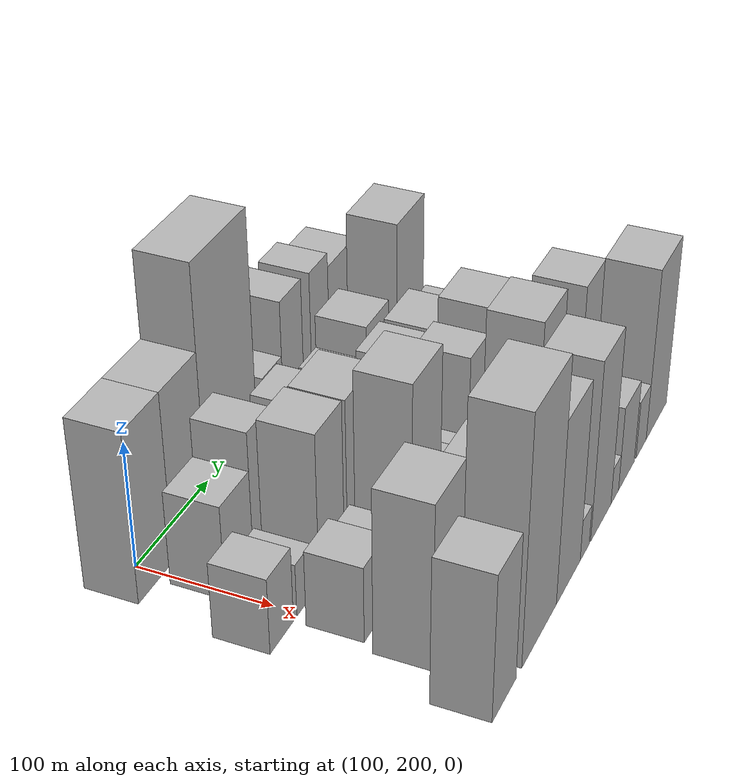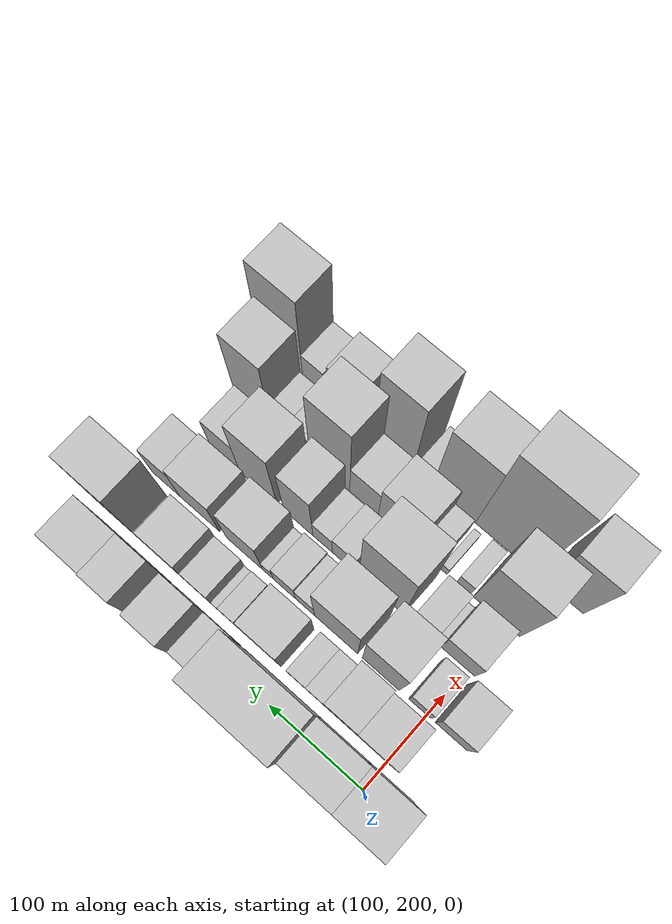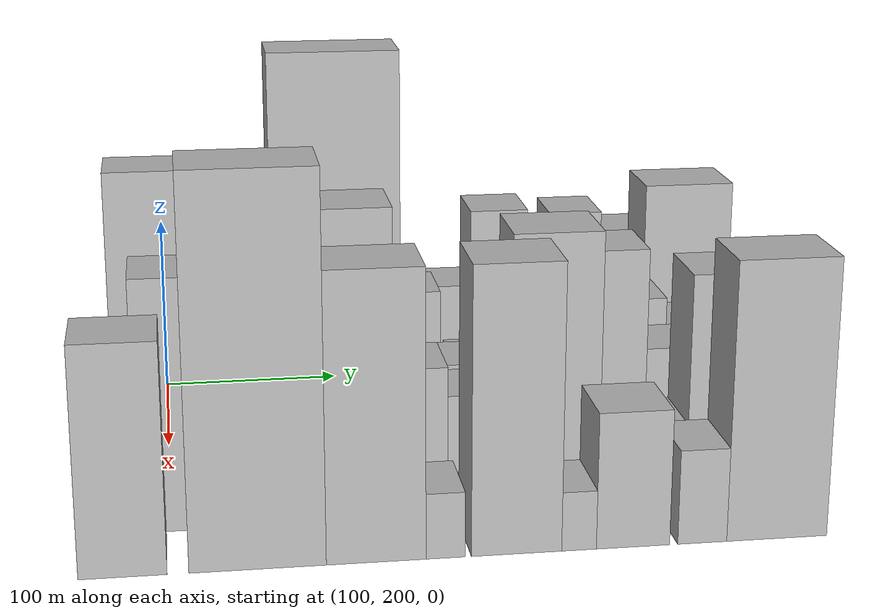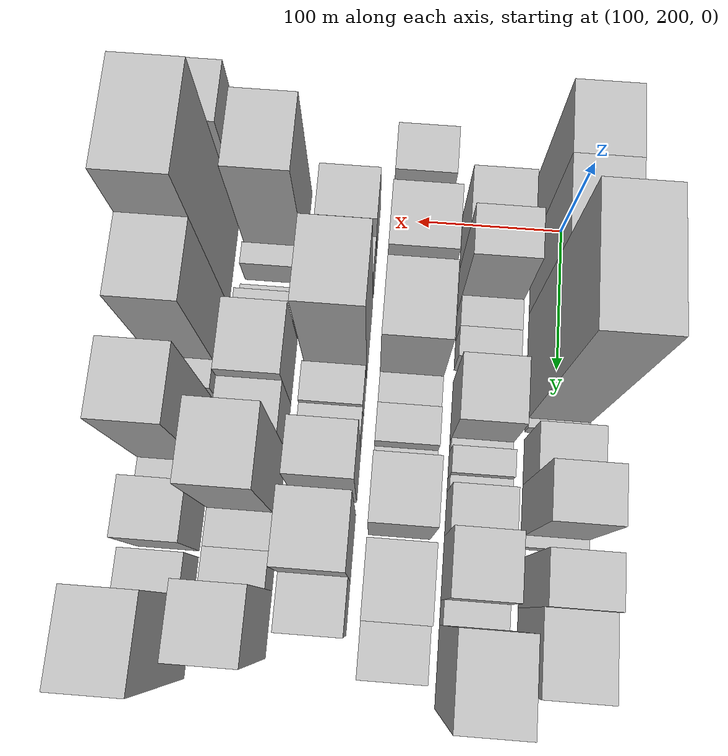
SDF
<sdf version="1.6">
 <world name="default">
  <model name="building_28">
   <static>1</static>
   <pose>100.0000 190.6589 0 0.000000 0.000000 0.000000</pose>
   <link name="link">
    <pose>0 0 67.50 0 0 0</pose>
    <collision name="collision"><geometry><box><size>40.0000 46.0056 135.0000</size></box></geometry></collision>
    <visual name="visual">
     <cast_shadows>0</cast_shadows>
     <geometry><box><size>40.0000 46.0056 135.0000</size></box></geometry>
     <material>
      <script>
       <uri>model://HANNAS_wall/materials/scripts</uri>
       <uri>model://HANNAS_wall/materials/textures</uri>
       <name>vrc/HANNAS_wall</name>
      </script>
     </material>
    </visual>
   </link>
  </model>
  <model name="building_29">
   <static>1</static>
   <pose>100.0000 237.8732 0 0.000000 0.000000 0.000000</pose>
   <link name="link">
    <pose>0 0 67.50 0 0 0</pose>
    <collision name="collision"><geometry><box><size>40.0000 48.4229 135.0000</size></box></geometry></collision>
    <visual name="visual">
     <cast_shadows>0</cast_shadows>
     <geometry><box><size>40.0000 48.4229 135.0000</size></box></geometry>
     <material>
      <script>
       <uri>model://HANNAS_wall/materials/scripts</uri>
       <uri>model://HANNAS_wall/materials/textures</uri>
       <name>vrc/HANNAS_wall</name>
      </script>
     </material>
    </visual>
   </link>
  </model>
  <model name="building_30">
   <static>1</static>
   <pose>100.0000 300.0080 0 0.000000 0.000000 0.000000</pose>
   <link name="link">
    <pose>0 0 100.50 0 0 0</pose>
    <collision name="collision"><geometry><box><size>40.0000 75.8467 201.0000</size></box></geometry></collision>
    <visual name="visual">
     <cast_shadows>0</cast_shadows>
     <geometry><box><size>40.0000 75.8467 201.0000</size></box></geometry>
     <material>
      <script>
       <uri>model://HANNAS_wall/materials/scripts</uri>
       <uri>model://HANNAS_wall/materials/textures</uri>
       <name>vrc/HANNAS_wall</name>
      </script>
     </material>
    </visual>
   </link>
  </model>
  <model name="building_31">
   <static>1</static>
   <pose>100.0000 341.1318 0 0.000000 0.000000 0.000000</pose>
   <link name="link">
    <pose>0 0 7.50 0 0 0</pose>
    <collision name="collision"><geometry><box><size>40.0000 6.4011 15.0000</size></box></geometry></collision>
    <visual name="visual">
     <cast_shadows>0</cast_shadows>
     <geometry><box><size>40.0000 6.4011 15.0000</size></box></geometry>
     <material>
      <script>
       <uri>model://HANNAS_wall/materials/scripts</uri>
       <uri>model://HANNAS_wall/materials/textures</uri>
       <name>vrc/HANNAS_wall</name>
      </script>
     </material>
    </visual>
   </link>
  </model>
  <model name="building_32">
   <static>1</static>
   <pose>100.0000 364.4983 0 0.000000 0.000000 0.000000</pose>
   <link name="link">
    <pose>0 0 30.00 0 0 0</pose>
    <collision name="collision"><geometry><box><size>40.0000 30.3318 60.0000</size></box></geometry></collision>
    <visual name="visual">
     <cast_shadows>0</cast_shadows>
     <geometry><box><size>40.0000 30.3318 60.0000</size></box></geometry>
     <material>
      <script>
       <uri>model://HANNAS_wall/materials/scripts</uri>
       <uri>model://HANNAS_wall/materials/textures</uri>
       <name>vrc/HANNAS_wall</name>
      </script>
     </material>
    </visual>
   </link>
  </model>
  <model name="building_33">
   <static>1</static>
   <pose>100.0000 396.5555 0 0.000000 0.000000 0.000000</pose>
   <link name="link">
    <pose>0 0 52.50 0 0 0</pose>
    <collision name="collision"><geometry><box><size>40.0000 33.7827 105.0000</size></box></geometry></collision>
    <visual name="visual">
     <cast_shadows>0</cast_shadows>
     <geometry><box><size>40.0000 33.7827 105.0000</size></box></geometry>
     <material>
      <script>
       <uri>model://HANNAS_wall/materials/scripts</uri>
       <uri>model://HANNAS_wall/materials/textures</uri>
       <name>vrc/HANNAS_wall</name>
      </script>
     </material>
    </visual>
   </link>
  </model>
  <model name="building_34">
   <static>1</static>
   <pose>100.0000 417.2055 0 0.000000 0.000000 0.000000</pose>
   <link name="link">
    <pose>0 0 9.00 0 0 0</pose>
    <collision name="collision"><geometry><box><size>40.0000 7.5172 18.0000</size></box></geometry></collision>
    <visual name="visual">
     <cast_shadows>0</cast_shadows>
     <geometry><box><size>40.0000 7.5172 18.0000</size></box></geometry>
     <material>
      <script>
       <uri>model://HANNAS_wall/materials/scripts</uri>
       <uri>model://HANNAS_wall/materials/textures</uri>
       <name>vrc/HANNAS_wall</name>
      </script>
     </material>
    </visual>
   </link>
  </model>
  <model name="building_35">
   <static>1</static>
   <pose>100.0000 442.3618 0 0.000000 0.000000 0.000000</pose>
   <link name="link">
    <pose>0 0 51.00 0 0 0</pose>
    <collision name="collision"><geometry><box><size>40.0000 30.7955 102.0000</size></box></geometry></collision>
    <visual name="visual">
     <cast_shadows>0</cast_shadows>
     <geometry><box><size>40.0000 30.7955 102.0000</size></box></geometry>
     <material>
      <script>
       <uri>model://HANNAS_wall/materials/scripts</uri>
       <uri>model://HANNAS_wall/materials/textures</uri>
       <name>vrc/HANNAS_wall</name>
      </script>
     </material>
    </visual>
   </link>
  </model>
  <model name="building_36">
   <static>1</static>
   <pose>100.0000 481.5599 0 0.000000 0.000000 0.000000</pose>
   <link name="link">
    <pose>0 0 45.00 0 0 0</pose>
    <collision name="collision"><geometry><box><size>40.0000 47.6008 90.0000</size></box></geometry></collision>
    <visual name="visual">
     <cast_shadows>0</cast_shadows>
     <geometry><box><size>40.0000 47.6008 90.0000</size></box></geometry>
     <material>
      <script>
       <uri>model://HANNAS_wall/materials/scripts</uri>
       <uri>model://HANNAS_wall/materials/textures</uri>
       <name>vrc/HANNAS_wall</name>
      </script>
     </material>
    </visual>
   </link>
  </model>
  <model name="building_77">
   <static>1</static>
   <pose>149.0000 213.2837 0 0.000000 0.000000 0.000000</pose>
   <link name="link">
    <pose>0 0 37.50 0 0 0</pose>
    <collision name="collision"><geometry><box><size>40.0000 40.1100 75.0000</size></box></geometry></collision>
    <visual name="visual">
     <cast_shadows>0</cast_shadows>
     <geometry><box><size>40.0000 40.1100 75.0000</size></box></geometry>
     <material>
      <script>
       <uri>model://HANNAS_wall/materials/scripts</uri>
       <uri>model://HANNAS_wall/materials/textures</uri>
       <name>vrc/HANNAS_wall</name>
      </script>
     </material>
    </visual>
   </link>
  </model>
  <model name="building_78">
   <static>1</static>
   <pose>149.0000 249.1378 0 0.000000 0.000000 0.000000</pose>
   <link name="link">
    <pose>0 0 52.50 0 0 0</pose>
    <collision name="collision"><geometry><box><size>40.0000 31.5982 105.0000</size></box></geometry></collision>
    <visual name="visual">
     <cast_shadows>0</cast_shadows>
     <geometry><box><size>40.0000 31.5982 105.0000</size></box></geometry>
     <material>
      <script>
       <uri>model://HANNAS_wall/materials/scripts</uri>
       <uri>model://HANNAS_wall/materials/textures</uri>
       <name>vrc/HANNAS_wall</name>
      </script>
     </material>
    </visual>
   </link>
  </model>
  <model name="building_79">
   <static>1</static>
   <pose>149.0000 275.2438 0 0.000000 0.000000 0.000000</pose>
   <link name="link">
    <pose>0 0 18.00 0 0 0</pose>
    <collision name="collision"><geometry><box><size>40.0000 20.6138 36.0000</size></box></geometry></collision>
    <visual name="visual">
     <cast_shadows>0</cast_shadows>
     <geometry><box><size>40.0000 20.6138 36.0000</size></box></geometry>
     <material>
      <script>
       <uri>model://HANNAS_wall/materials/scripts</uri>
       <uri>model://HANNAS_wall/materials/textures</uri>
       <name>vrc/HANNAS_wall</name>
      </script>
     </material>
    </visual>
   </link>
  </model>
  <model name="building_80">
   <static>1</static>
   <pose>149.0000 295.6123 0 0.000000 0.000000 0.000000</pose>
   <link name="link">
    <pose>0 0 18.00 0 0 0</pose>
    <collision name="collision"><geometry><box><size>40.0000 20.1232 36.0000</size></box></geometry></collision>
    <visual name="visual">
     <cast_shadows>0</cast_shadows>
     <geometry><box><size>40.0000 20.1232 36.0000</size></box></geometry>
     <material>
      <script>
       <uri>model://HANNAS_wall/materials/scripts</uri>
       <uri>model://HANNAS_wall/materials/textures</uri>
       <name>vrc/HANNAS_wall</name>
      </script>
     </material>
    </visual>
   </link>
  </model>
  <model name="building_81">
   <static>1</static>
   <pose>149.0000 334.1449 0 0.000000 0.000000 0.000000</pose>
   <link name="link">
    <pose>0 0 36.00 0 0 0</pose>
    <collision name="collision"><geometry><box><size>40.0000 40.9420 72.0000</size></box></geometry></collision>
    <visual name="visual">
     <cast_shadows>0</cast_shadows>
     <geometry><box><size>40.0000 40.9420 72.0000</size></box></geometry>
     <material>
      <script>
       <uri>model://HANNAS_wall/materials/scripts</uri>
       <uri>model://HANNAS_wall/materials/textures</uri>
       <name>vrc/HANNAS_wall</name>
      </script>
     </material>
    </visual>
   </link>
  </model>
  <model name="building_82">
   <static>1</static>
   <pose>149.0000 358.3603 0 0.000000 0.000000 0.000000</pose>
   <link name="link">
    <pose>0 0 7.50 0 0 0</pose>
    <collision name="collision"><geometry><box><size>40.0000 7.4889 15.0000</size></box></geometry></collision>
    <visual name="visual">
     <cast_shadows>0</cast_shadows>
     <geometry><box><size>40.0000 7.4889 15.0000</size></box></geometry>
     <material>
      <script>
       <uri>model://HANNAS_wall/materials/scripts</uri>
       <uri>model://HANNAS_wall/materials/textures</uri>
       <name>vrc/HANNAS_wall</name>
      </script>
     </material>
    </visual>
   </link>
  </model>
  <model name="building_83">
   <static>1</static>
   <pose>149.0000 370.8016 0 0.000000 0.000000 0.000000</pose>
   <link name="link">
    <pose>0 0 15.00 0 0 0</pose>
    <collision name="collision"><geometry><box><size>40.0000 17.3936 30.0000</size></box></geometry></collision>
    <visual name="visual">
     <cast_shadows>0</cast_shadows>
     <geometry><box><size>40.0000 17.3936 30.0000</size></box></geometry>
     <material>
      <script>
       <uri>model://HANNAS_wall/materials/scripts</uri>
       <uri>model://HANNAS_wall/materials/textures</uri>
       <name>vrc/HANNAS_wall</name>
      </script>
     </material>
    </visual>
   </link>
  </model>
  <model name="building_84">
   <static>1</static>
   <pose>149.0000 383.8453 0 0.000000 0.000000 0.000000</pose>
   <link name="link">
    <pose>0 0 10.50 0 0 0</pose>
    <collision name="collision"><geometry><box><size>40.0000 8.6939 21.0000</size></box></geometry></collision>
    <visual name="visual">
     <cast_shadows>0</cast_shadows>
     <geometry><box><size>40.0000 8.6939 21.0000</size></box></geometry>
     <material>
      <script>
       <uri>model://HANNAS_wall/materials/scripts</uri>
       <uri>model://HANNAS_wall/materials/textures</uri>
       <name>vrc/HANNAS_wall</name>
      </script>
     </material>
    </visual>
   </link>
  </model>
  <model name="building_85">
   <static>1</static>
   <pose>149.0000 402.3575 0 0.000000 0.000000 0.000000</pose>
   <link name="link">
    <pose>0 0 24.00 0 0 0</pose>
    <collision name="collision"><geometry><box><size>40.0000 28.3305 48.0000</size></box></geometry></collision>
    <visual name="visual">
     <cast_shadows>0</cast_shadows>
     <geometry><box><size>40.0000 28.3305 48.0000</size></box></geometry>
     <material>
      <script>
       <uri>model://HANNAS_wall/materials/scripts</uri>
       <uri>model://HANNAS_wall/materials/textures</uri>
       <name>vrc/HANNAS_wall</name>
      </script>
     </material>
    </visual>
   </link>
  </model>
  <model name="building_86">
   <static>1</static>
   <pose>149.0000 436.6091 0 0.000000 0.000000 0.000000</pose>
   <link name="link">
    <pose>0 0 37.50 0 0 0</pose>
    <collision name="collision"><geometry><box><size>40.0000 40.1727 75.0000</size></box></geometry></collision>
    <visual name="visual">
     <cast_shadows>0</cast_shadows>
     <geometry><box><size>40.0000 40.1727 75.0000</size></box></geometry>
     <material>
      <script>
       <uri>model://HANNAS_wall/materials/scripts</uri>
       <uri>model://HANNAS_wall/materials/textures</uri>
       <name>vrc/HANNAS_wall</name>
      </script>
     </material>
    </visual>
   </link>
  </model>
  <model name="building_87">
   <static>1</static>
   <pose>149.0000 464.2760 0 0.000000 0.000000 0.000000</pose>
   <link name="link">
    <pose>0 0 15.00 0 0 0</pose>
    <collision name="collision"><geometry><box><size>40.0000 15.1610 30.0000</size></box></geometry></collision>
    <visual name="visual">
     <cast_shadows>0</cast_shadows>
     <geometry><box><size>40.0000 15.1610 30.0000</size></box></geometry>
     <material>
      <script>
       <uri>model://HANNAS_wall/materials/scripts</uri>
       <uri>model://HANNAS_wall/materials/textures</uri>
       <name>vrc/HANNAS_wall</name>
      </script>
     </material>
    </visual>
   </link>
  </model>
  <model name="building_88">
   <static>1</static>
   <pose>149.0000 496.9152 0 0.000000 0.000000 0.000000</pose>
   <link name="link">
    <pose>0 0 64.50 0 0 0</pose>
    <collision name="collision"><geometry><box><size>40.0000 50.1175 129.0000</size></box></geometry></collision>
    <visual name="visual">
     <cast_shadows>0</cast_shadows>
     <geometry><box><size>40.0000 50.1175 129.0000</size></box></geometry>
     <material>
      <script>
       <uri>model://HANNAS_wall/materials/scripts</uri>
       <uri>model://HANNAS_wall/materials/textures</uri>
       <name>vrc/HANNAS_wall</name>
      </script>
     </material>
    </visual>
   </link>
  </model>
  <model name="building_128">
   <static>1</static>
   <pose>198.0000 175.1893 0 0.000000 0.000000 0.000000</pose>
   <link name="link">
    <pose>0 0 30.00 0 0 0</pose>
    <collision name="collision"><geometry><box><size>40.0000 33.1063 60.0000</size></box></geometry></collision>
    <visual name="visual">
     <cast_shadows>0</cast_shadows>
     <geometry><box><size>40.0000 33.1063 60.0000</size></box></geometry>
     <material>
      <script>
       <uri>model://HANNAS_wall/materials/scripts</uri>
       <uri>model://HANNAS_wall/materials/textures</uri>
       <name>vrc/HANNAS_wall</name>
      </script>
     </material>
    </visual>
   </link>
  </model>
  <model name="building_129">
   <static>1</static>
   <pose>198.0000 208.2592 0 0.000000 0.000000 0.000000</pose>
   <link name="link">
    <pose>0 0 21.00 0 0 0</pose>
    <collision name="collision"><geometry><box><size>40.0000 23.0335 42.0000</size></box></geometry></collision>
    <visual name="visual">
     <cast_shadows>0</cast_shadows>
     <geometry><box><size>40.0000 23.0335 42.0000</size></box></geometry>
     <material>
      <script>
       <uri>model://HANNAS_wall/materials/scripts</uri>
       <uri>model://HANNAS_wall/materials/textures</uri>
       <name>vrc/HANNAS_wall</name>
      </script>
     </material>
    </visual>
   </link>
  </model>
  <model name="building_130">
   <static>1</static>
   <pose>198.0000 249.4900 0 0.000000 0.000000 0.000000</pose>
   <link name="link">
    <pose>0 0 60.00 0 0 0</pose>
    <collision name="collision"><geometry><box><size>40.0000 39.4283 120.0000</size></box></geometry></collision>
    <visual name="visual">
     <cast_shadows>0</cast_shadows>
     <geometry><box><size>40.0000 39.4283 120.0000</size></box></geometry>
     <material>
      <script>
       <uri>model://HANNAS_wall/materials/scripts</uri>
       <uri>model://HANNAS_wall/materials/textures</uri>
       <name>vrc/HANNAS_wall</name>
      </script>
     </material>
    </visual>
   </link>
  </model>
  <model name="building_131">
   <static>1</static>
   <pose>198.0000 297.5132 0 0.000000 0.000000 0.000000</pose>
   <link name="link">
    <pose>0 0 58.50 0 0 0</pose>
    <collision name="collision"><geometry><box><size>40.0000 46.6180 117.0000</size></box></geometry></collision>
    <visual name="visual">
     <cast_shadows>0</cast_shadows>
     <geometry><box><size>40.0000 46.6180 117.0000</size></box></geometry>
     <material>
      <script>
       <uri>model://HANNAS_wall/materials/scripts</uri>
       <uri>model://HANNAS_wall/materials/textures</uri>
       <name>vrc/HANNAS_wall</name>
      </script>
     </material>
    </visual>
   </link>
  </model>
  <model name="building_132">
   <static>1</static>
   <pose>198.0000 331.3176 0 0.000000 0.000000 0.000000</pose>
   <link name="link">
    <pose>0 0 19.50 0 0 0</pose>
    <collision name="collision"><geometry><box><size>40.0000 20.9909 39.0000</size></box></geometry></collision>
    <visual name="visual">
     <cast_shadows>0</cast_shadows>
     <geometry><box><size>40.0000 20.9909 39.0000</size></box></geometry>
     <material>
      <script>
       <uri>model://HANNAS_wall/materials/scripts</uri>
       <uri>model://HANNAS_wall/materials/textures</uri>
       <name>vrc/HANNAS_wall</name>
      </script>
     </material>
    </visual>
   </link>
  </model>
  <model name="building_133">
   <static>1</static>
   <pose>198.0000 353.9723 0 0.000000 0.000000 0.000000</pose>
   <link name="link">
    <pose>0 0 22.50 0 0 0</pose>
    <collision name="collision"><geometry><box><size>40.0000 24.3185 45.0000</size></box></geometry></collision>
    <visual name="visual">
     <cast_shadows>0</cast_shadows>
     <geometry><box><size>40.0000 24.3185 45.0000</size></box></geometry>
     <material>
      <script>
       <uri>model://HANNAS_wall/materials/scripts</uri>
       <uri>model://HANNAS_wall/materials/textures</uri>
       <name>vrc/HANNAS_wall</name>
      </script>
     </material>
    </visual>
   </link>
  </model>
  <model name="building_134">
   <static>1</static>
   <pose>198.0000 372.3274 0 0.000000 0.000000 0.000000</pose>
   <link name="link">
    <pose>0 0 13.50 0 0 0</pose>
    <collision name="collision"><geometry><box><size>40.0000 12.3916 27.0000</size></box></geometry></collision>
    <visual name="visual">
     <cast_shadows>0</cast_shadows>
     <geometry><box><size>40.0000 12.3916 27.0000</size></box></geometry>
     <material>
      <script>
       <uri>model://HANNAS_wall/materials/scripts</uri>
       <uri>model://HANNAS_wall/materials/textures</uri>
       <name>vrc/HANNAS_wall</name>
      </script>
     </material>
    </visual>
   </link>
  </model>
  <model name="building_135">
   <static>1</static>
   <pose>198.0000 398.9053 0 0.000000 0.000000 0.000000</pose>
   <link name="link">
    <pose>0 0 40.50 0 0 0</pose>
    <collision name="collision"><geometry><box><size>40.0000 40.7642 81.0000</size></box></geometry></collision>
    <visual name="visual">
     <cast_shadows>0</cast_shadows>
     <geometry><box><size>40.0000 40.7642 81.0000</size></box></geometry>
     <material>
      <script>
       <uri>model://HANNAS_wall/materials/scripts</uri>
       <uri>model://HANNAS_wall/materials/textures</uri>
       <name>vrc/HANNAS_wall</name>
      </script>
     </material>
    </visual>
   </link>
  </model>
  <model name="building_136">
   <static>1</static>
   <pose>198.0000 449.9651 0 0.000000 0.000000 0.000000</pose>
   <link name="link">
    <pose>0 0 39.00 0 0 0</pose>
    <collision name="collision"><geometry><box><size>40.0000 45.3555 78.0000</size></box></geometry></collision>
    <visual name="visual">
     <cast_shadows>0</cast_shadows>
     <geometry><box><size>40.0000 45.3555 78.0000</size></box></geometry>
     <material>
      <script>
       <uri>model://HANNAS_wall/materials/scripts</uri>
       <uri>model://HANNAS_wall/materials/textures</uri>
       <name>vrc/HANNAS_wall</name>
      </script>
     </material>
    </visual>
   </link>
  </model>
  <model name="building_137">
   <static>1</static>
   <pose>198.0000 488.6839 0 0.000000 0.000000 0.000000</pose>
   <link name="link">
    <pose>0 0 31.50 0 0 0</pose>
    <collision name="collision"><geometry><box><size>40.0000 32.0820 63.0000</size></box></geometry></collision>
    <visual name="visual">
     <cast_shadows>0</cast_shadows>
     <geometry><box><size>40.0000 32.0820 63.0000</size></box></geometry>
     <material>
      <script>
       <uri>model://HANNAS_wall/materials/scripts</uri>
       <uri>model://HANNAS_wall/materials/textures</uri>
       <name>vrc/HANNAS_wall</name>
      </script>
     </material>
    </visual>
   </link>
  </model>
  <model name="building_179">
   <static>1</static>
   <pose>247.0000 209.3337 0 0.000000 0.000000 0.000000</pose>
   <link name="link">
    <pose>0 0 30.00 0 0 0</pose>
    <collision name="collision"><geometry><box><size>40.0000 35.7983 60.0000</size></box></geometry></collision>
    <visual name="visual">
     <cast_shadows>0</cast_shadows>
     <geometry><box><size>40.0000 35.7983 60.0000</size></box></geometry>
     <material>
      <script>
       <uri>model://HANNAS_wall/materials/scripts</uri>
       <uri>model://HANNAS_wall/materials/textures</uri>
       <name>vrc/HANNAS_wall</name>
      </script>
     </material>
    </visual>
   </link>
  </model>
  <model name="building_180">
   <static>1</static>
   <pose>247.0000 230.7442 0 0.000000 0.000000 0.000000</pose>
   <link name="link">
    <pose>0 0 7.50 0 0 0</pose>
    <collision name="collision"><geometry><box><size>40.0000 7.0227 15.0000</size></box></geometry></collision>
    <visual name="visual">
     <cast_shadows>0</cast_shadows>
     <geometry><box><size>40.0000 7.0227 15.0000</size></box></geometry>
     <material>
      <script>
       <uri>model://HANNAS_wall/materials/scripts</uri>
       <uri>model://HANNAS_wall/materials/textures</uri>
       <name>vrc/HANNAS_wall</name>
      </script>
     </material>
    </visual>
   </link>
  </model>
  <model name="building_181">
   <static>1</static>
   <pose>247.0000 246.6758 0 0.000000 0.000000 0.000000</pose>
   <link name="link">
    <pose>0 0 24.00 0 0 0</pose>
    <collision name="collision"><geometry><box><size>40.0000 24.8406 48.0000</size></box></geometry></collision>
    <visual name="visual">
     <cast_shadows>0</cast_shadows>
     <geometry><box><size>40.0000 24.8406 48.0000</size></box></geometry>
     <material>
      <script>
       <uri>model://HANNAS_wall/materials/scripts</uri>
       <uri>model://HANNAS_wall/materials/textures</uri>
       <name>vrc/HANNAS_wall</name>
      </script>
     </material>
    </visual>
   </link>
  </model>
  <model name="building_182">
   <static>1</static>
   <pose>247.0000 291.5370 0 0.000000 0.000000 0.000000</pose>
   <link name="link">
    <pose>0 0 73.50 0 0 0</pose>
    <collision name="collision"><geometry><box><size>40.0000 48.8818 147.0000</size></box></geometry></collision>
    <visual name="visual">
     <cast_shadows>0</cast_shadows>
     <geometry><box><size>40.0000 48.8818 147.0000</size></box></geometry>
     <material>
      <script>
       <uri>model://HANNAS_wall/materials/scripts</uri>
       <uri>model://HANNAS_wall/materials/textures</uri>
       <name>vrc/HANNAS_wall</name>
      </script>
     </material>
    </visual>
   </link>
  </model>
  <model name="building_183">
   <static>1</static>
   <pose>247.0000 332.5207 0 0.000000 0.000000 0.000000</pose>
   <link name="link">
    <pose>0 0 24.00 0 0 0</pose>
    <collision name="collision"><geometry><box><size>40.0000 25.0857 48.0000</size></box></geometry></collision>
    <visual name="visual">
     <cast_shadows>0</cast_shadows>
     <geometry><box><size>40.0000 25.0857 48.0000</size></box></geometry>
     <material>
      <script>
       <uri>model://HANNAS_wall/materials/scripts</uri>
       <uri>model://HANNAS_wall/materials/textures</uri>
       <name>vrc/HANNAS_wall</name>
      </script>
     </material>
    </visual>
   </link>
  </model>
  <model name="building_184">
   <static>1</static>
   <pose>247.0000 355.8893 0 0.000000 0.000000 0.000000</pose>
   <link name="link">
    <pose>0 0 21.00 0 0 0</pose>
    <collision name="collision"><geometry><box><size>40.0000 21.6515 42.0000</size></box></geometry></collision>
    <visual name="visual">
     <cast_shadows>0</cast_shadows>
     <geometry><box><size>40.0000 21.6515 42.0000</size></box></geometry>
     <material>
      <script>
       <uri>model://HANNAS_wall/materials/scripts</uri>
       <uri>model://HANNAS_wall/materials/textures</uri>
       <name>vrc/HANNAS_wall</name>
      </script>
     </material>
    </visual>
   </link>
  </model>
  <model name="building_185">
   <static>1</static>
   <pose>247.0000 383.0094 0 0.000000 0.000000 0.000000</pose>
   <link name="link">
    <pose>0 0 52.50 0 0 0</pose>
    <collision name="collision"><geometry><box><size>40.0000 32.5887 105.0000</size></box></geometry></collision>
    <visual name="visual">
     <cast_shadows>0</cast_shadows>
     <geometry><box><size>40.0000 32.5887 105.0000</size></box></geometry>
     <material>
      <script>
       <uri>model://HANNAS_wall/materials/scripts</uri>
       <uri>model://HANNAS_wall/materials/textures</uri>
       <name>vrc/HANNAS_wall</name>
      </script>
     </material>
    </visual>
   </link>
  </model>
  <model name="building_186">
   <static>1</static>
   <pose>247.0000 428.4027 0 0.000000 0.000000 0.000000</pose>
   <link name="link">
    <pose>0 0 60.00 0 0 0</pose>
    <collision name="collision"><geometry><box><size>40.0000 42.1980 120.0000</size></box></geometry></collision>
    <visual name="visual">
     <cast_shadows>0</cast_shadows>
     <geometry><box><size>40.0000 42.1980 120.0000</size></box></geometry>
     <material>
      <script>
       <uri>model://HANNAS_wall/materials/scripts</uri>
       <uri>model://HANNAS_wall/materials/textures</uri>
       <name>vrc/HANNAS_wall</name>
      </script>
     </material>
    </visual>
   </link>
  </model>
  <model name="building_187">
   <static>1</static>
   <pose>247.0000 466.2460 0 0.000000 0.000000 0.000000</pose>
   <link name="link">
    <pose>0 0 33.00 0 0 0</pose>
    <collision name="collision"><geometry><box><size>40.0000 33.4886 66.0000</size></box></geometry></collision>
    <visual name="visual">
     <cast_shadows>0</cast_shadows>
     <geometry><box><size>40.0000 33.4886 66.0000</size></box></geometry>
     <material>
      <script>
       <uri>model://HANNAS_wall/materials/scripts</uri>
       <uri>model://HANNAS_wall/materials/textures</uri>
       <name>vrc/HANNAS_wall</name>
      </script>
     </material>
    </visual>
   </link>
  </model>
  <model name="building_231">
   <static>1</static>
   <pose>296.0000 209.0553 0 0.000000 0.000000 0.000000</pose>
   <link name="link">
    <pose>0 0 64.50 0 0 0</pose>
    <collision name="collision"><geometry><box><size>40.0000 49.4834 129.0000</size></box></geometry></collision>
    <visual name="visual">
     <cast_shadows>0</cast_shadows>
     <geometry><box><size>40.0000 49.4834 129.0000</size></box></geometry>
     <material>
      <script>
       <uri>model://HANNAS_wall/materials/scripts</uri>
       <uri>model://HANNAS_wall/materials/textures</uri>
       <name>vrc/HANNAS_wall</name>
      </script>
     </material>
    </visual>
   </link>
  </model>
  <model name="building_232">
   <static>1</static>
   <pose>296.0000 244.3290 0 0.000000 0.000000 0.000000</pose>
   <link name="link">
    <pose>0 0 15.00 0 0 0</pose>
    <collision name="collision"><geometry><box><size>40.0000 15.0640 30.0000</size></box></geometry></collision>
    <visual name="visual">
     <cast_shadows>0</cast_shadows>
     <geometry><box><size>40.0000 15.0640 30.0000</size></box></geometry>
     <material>
      <script>
       <uri>model://HANNAS_wall/materials/scripts</uri>
       <uri>model://HANNAS_wall/materials/textures</uri>
       <name>vrc/HANNAS_wall</name>
      </script>
     </material>
    </visual>
   </link>
  </model>
  <model name="building_233">
   <static>1</static>
   <pose>296.0000 265.5873 0 0.000000 0.000000 0.000000</pose>
   <link name="link">
    <pose>0 0 9.00 0 0 0</pose>
    <collision name="collision"><geometry><box><size>40.0000 7.4527 18.0000</size></box></geometry></collision>
    <visual name="visual">
     <cast_shadows>0</cast_shadows>
     <geometry><box><size>40.0000 7.4527 18.0000</size></box></geometry>
     <material>
      <script>
       <uri>model://HANNAS_wall/materials/scripts</uri>
       <uri>model://HANNAS_wall/materials/textures</uri>
       <name>vrc/HANNAS_wall</name>
      </script>
     </material>
    </visual>
   </link>
  </model>
  <model name="building_234">
   <static>1</static>
   <pose>296.0000 282.3575 0 0.000000 0.000000 0.000000</pose>
   <link name="link">
    <pose>0 0 19.50 0 0 0</pose>
    <collision name="collision"><geometry><box><size>40.0000 20.0877 39.0000</size></box></geometry></collision>
    <visual name="visual">
     <cast_shadows>0</cast_shadows>
     <geometry><box><size>40.0000 20.0877 39.0000</size></box></geometry>
     <material>
      <script>
       <uri>model://HANNAS_wall/materials/scripts</uri>
       <uri>model://HANNAS_wall/materials/textures</uri>
       <name>vrc/HANNAS_wall</name>
      </script>
     </material>
    </visual>
   </link>
  </model>
  <model name="building_235">
   <static>1</static>
   <pose>296.0000 314.8577 0 0.000000 0.000000 0.000000</pose>
   <link name="link">
    <pose>0 0 39.00 0 0 0</pose>
    <collision name="collision"><geometry><box><size>40.0000 44.9128 78.0000</size></box></geometry></collision>
    <visual name="visual">
     <cast_shadows>0</cast_shadows>
     <geometry><box><size>40.0000 44.9128 78.0000</size></box></geometry>
     <material>
      <script>
       <uri>model://HANNAS_wall/materials/scripts</uri>
       <uri>model://HANNAS_wall/materials/textures</uri>
       <name>vrc/HANNAS_wall</name>
      </script>
     </material>
    </visual>
   </link>
  </model>
  <model name="building_236">
   <static>1</static>
   <pose>296.0000 353.2326 0 0.000000 0.000000 0.000000</pose>
   <link name="link">
    <pose>0 0 31.50 0 0 0</pose>
    <collision name="collision"><geometry><box><size>40.0000 31.8369 63.0000</size></box></geometry></collision>
    <visual name="visual">
     <cast_shadows>0</cast_shadows>
     <geometry><box><size>40.0000 31.8369 63.0000</size></box></geometry>
     <material>
      <script>
       <uri>model://HANNAS_wall/materials/scripts</uri>
       <uri>model://HANNAS_wall/materials/textures</uri>
       <name>vrc/HANNAS_wall</name>
      </script>
     </material>
    </visual>
   </link>
  </model>
  <model name="building_237">
   <static>1</static>
   <pose>296.0000 391.5970 0 0.000000 0.000000 0.000000</pose>
   <link name="link">
    <pose>0 0 72.00 0 0 0</pose>
    <collision name="collision"><geometry><box><size>40.0000 44.8920 144.0000</size></box></geometry></collision>
    <visual name="visual">
     <cast_shadows>0</cast_shadows>
     <geometry><box><size>40.0000 44.8920 144.0000</size></box></geometry>
     <material>
      <script>
       <uri>model://HANNAS_wall/materials/scripts</uri>
       <uri>model://HANNAS_wall/materials/textures</uri>
       <name>vrc/HANNAS_wall</name>
      </script>
     </material>
    </visual>
   </link>
  </model>
  <model name="building_238">
   <static>1</static>
   <pose>296.0000 425.5940 0 0.000000 0.000000 0.000000</pose>
   <link name="link">
    <pose>0 0 21.00 0 0 0</pose>
    <collision name="collision"><geometry><box><size>40.0000 23.1021 42.0000</size></box></geometry></collision>
    <visual name="visual">
     <cast_shadows>0</cast_shadows>
     <geometry><box><size>40.0000 23.1021 42.0000</size></box></geometry>
     <material>
      <script>
       <uri>model://HANNAS_wall/materials/scripts</uri>
       <uri>model://HANNAS_wall/materials/textures</uri>
       <name>vrc/HANNAS_wall</name>
      </script>
     </material>
    </visual>
   </link>
  </model>
  <model name="building_239">
   <static>1</static>
   <pose>296.0000 448.1309 0 0.000000 0.000000 0.000000</pose>
   <link name="link">
    <pose>0 0 21.00 0 0 0</pose>
    <collision name="collision"><geometry><box><size>40.0000 21.9718 42.0000</size></box></geometry></collision>
    <visual name="visual">
     <cast_shadows>0</cast_shadows>
     <geometry><box><size>40.0000 21.9718 42.0000</size></box></geometry>
     <material>
      <script>
       <uri>model://HANNAS_wall/materials/scripts</uri>
       <uri>model://HANNAS_wall/materials/textures</uri>
       <name>vrc/HANNAS_wall</name>
      </script>
     </material>
    </visual>
   </link>
  </model>
  <model name="building_240">
   <static>1</static>
   <pose>296.0000 479.8378 0 0.000000 0.000000 0.000000</pose>
   <link name="link">
    <pose>0 0 60.00 0 0 0</pose>
    <collision name="collision"><geometry><box><size>40.0000 41.4419 120.0000</size></box></geometry></collision>
    <visual name="visual">
     <cast_shadows>0</cast_shadows>
     <geometry><box><size>40.0000 41.4419 120.0000</size></box></geometry>
     <material>
      <script>
       <uri>model://HANNAS_wall/materials/scripts</uri>
       <uri>model://HANNAS_wall/materials/textures</uri>
       <name>vrc/HANNAS_wall</name>
      </script>
     </material>
    </visual>
   </link>
  </model>
  <model name="building_276">
   <static>1</static>
   <pose>345.0000 177.8045 0 0.000000 0.000000 0.000000</pose>
   <link name="link">
    <pose>0 0 57.00 0 0 0</pose>
    <collision name="collision"><geometry><box><size>40.0000 40.8917 114.0000</size></box></geometry></collision>
    <visual name="visual">
     <cast_shadows>0</cast_shadows>
     <geometry><box><size>40.0000 40.8917 114.0000</size></box></geometry>
     <material>
      <script>
       <uri>model://HANNAS_wall/materials/scripts</uri>
       <uri>model://HANNAS_wall/materials/textures</uri>
       <name>vrc/HANNAS_wall</name>
      </script>
     </material>
    </visual>
   </link>
  </model>
  <model name="building_277">
   <static>1</static>
   <pose>345.0000 240.3098 0 0.000000 0.000000 0.000000</pose>
   <link name="link">
    <pose>0 0 96.00 0 0 0</pose>
    <collision name="collision"><geometry><box><size>40.0000 64.1189 192.0000</size></box></geometry></collision>
    <visual name="visual">
     <cast_shadows>0</cast_shadows>
     <geometry><box><size>40.0000 64.1189 192.0000</size></box></geometry>
     <material>
      <script>
       <uri>model://HANNAS_wall/materials/scripts</uri>
       <uri>model://HANNAS_wall/materials/textures</uri>
       <name>vrc/HANNAS_wall</name>
      </script>
     </material>
    </visual>
   </link>
  </model>
  <model name="building_278">
   <static>1</static>
   <pose>345.0000 295.9930 0 0.000000 0.000000 0.000000</pose>
   <link name="link">
    <pose>0 0 72.00 0 0 0</pose>
    <collision name="collision"><geometry><box><size>40.0000 47.2474 144.0000</size></box></geometry></collision>
    <visual name="visual">
     <cast_shadows>0</cast_shadows>
     <geometry><box><size>40.0000 47.2474 144.0000</size></box></geometry>
     <material>
      <script>
       <uri>model://HANNAS_wall/materials/scripts</uri>
       <uri>model://HANNAS_wall/materials/textures</uri>
       <name>vrc/HANNAS_wall</name>
      </script>
     </material>
    </visual>
   </link>
  </model>
  <model name="building_279">
   <static>1</static>
   <pose>345.0000 328.9728 0 0.000000 0.000000 0.000000</pose>
   <link name="link">
    <pose>0 0 16.50 0 0 0</pose>
    <collision name="collision"><geometry><box><size>40.0000 18.7121 33.0000</size></box></geometry></collision>
    <visual name="visual">
     <cast_shadows>0</cast_shadows>
     <geometry><box><size>40.0000 18.7121 33.0000</size></box></geometry>
     <material>
      <script>
       <uri>model://HANNAS_wall/materials/scripts</uri>
       <uri>model://HANNAS_wall/materials/textures</uri>
       <name>vrc/HANNAS_wall</name>
      </script>
     </material>
    </visual>
   </link>
  </model>
  <model name="building_280">
   <static>1</static>
   <pose>345.0000 363.1730 0 0.000000 0.000000 0.000000</pose>
   <link name="link">
    <pose>0 0 72.00 0 0 0</pose>
    <collision name="collision"><geometry><box><size>40.0000 43.6884 144.0000</size></box></geometry></collision>
    <visual name="visual">
     <cast_shadows>0</cast_shadows>
     <geometry><box><size>40.0000 43.6884 144.0000</size></box></geometry>
     <material>
      <script>
       <uri>model://HANNAS_wall/materials/scripts</uri>
       <uri>model://HANNAS_wall/materials/textures</uri>
       <name>vrc/HANNAS_wall</name>
      </script>
     </material>
    </visual>
   </link>
  </model>
  <model name="building_281">
   <static>1</static>
   <pose>345.0000 393.4663 0 0.000000 0.000000 0.000000</pose>
   <link name="link">
    <pose>0 0 15.00 0 0 0</pose>
    <collision name="collision"><geometry><box><size>40.0000 16.8981 30.0000</size></box></geometry></collision>
    <visual name="visual">
     <cast_shadows>0</cast_shadows>
     <geometry><box><size>40.0000 16.8981 30.0000</size></box></geometry>
     <material>
      <script>
       <uri>model://HANNAS_wall/materials/scripts</uri>
       <uri>model://HANNAS_wall/materials/textures</uri>
       <name>vrc/HANNAS_wall</name>
      </script>
     </material>
    </visual>
   </link>
  </model>
  <model name="building_282">
   <static>1</static>
   <pose>345.0000 419.9333 0 0.000000 0.000000 0.000000</pose>
   <link name="link">
    <pose>0 0 34.50 0 0 0</pose>
    <collision name="collision"><geometry><box><size>40.0000 36.0361 69.0000</size></box></geometry></collision>
    <visual name="visual">
     <cast_shadows>0</cast_shadows>
     <geometry><box><size>40.0000 36.0361 69.0000</size></box></geometry>
     <material>
      <script>
       <uri>model://HANNAS_wall/materials/scripts</uri>
       <uri>model://HANNAS_wall/materials/textures</uri>
       <name>vrc/HANNAS_wall</name>
      </script>
     </material>
    </visual>
   </link>
  </model>
  <model name="building_283">
   <static>1</static>
   <pose>345.0000 454.1116 0 0.000000 0.000000 0.000000</pose>
   <link name="link">
    <pose>0 0 24.00 0 0 0</pose>
    <collision name="collision"><geometry><box><size>40.0000 24.3205 48.0000</size></box></geometry></collision>
    <visual name="visual">
     <cast_shadows>0</cast_shadows>
     <geometry><box><size>40.0000 24.3205 48.0000</size></box></geometry>
     <material>
      <script>
       <uri>model://HANNAS_wall/materials/scripts</uri>
       <uri>model://HANNAS_wall/materials/textures</uri>
       <name>vrc/HANNAS_wall</name>
      </script>
     </material>
    </visual>
   </link>
  </model>
  <model name="building_284">
   <static>1</static>
   <pose>345.0000 491.3290 0 0.000000 0.000000 0.000000</pose>
   <link name="link">
    <pose>0 0 70.50 0 0 0</pose>
    <collision name="collision"><geometry><box><size>40.0000 50.1143 141.0000</size></box></geometry></collision>
    <visual name="visual">
     <cast_shadows>0</cast_shadows>
     <geometry><box><size>40.0000 50.1143 141.0000</size></box></geometry>
     <material>
      <script>
       <uri>model://HANNAS_wall/materials/scripts</uri>
       <uri>model://HANNAS_wall/materials/textures</uri>
       <name>vrc/HANNAS_wall</name>
      </script>
     </material>
    </visual>
   </link>
  </model>
 </world>
</sdf>
